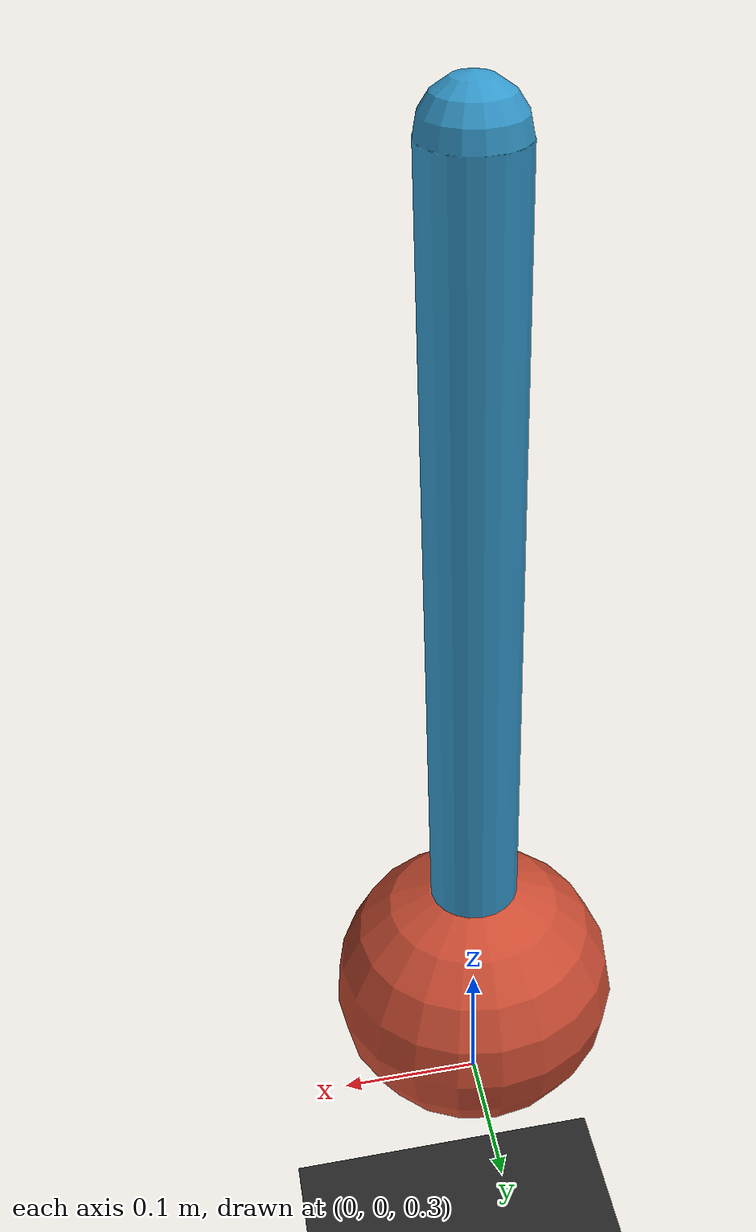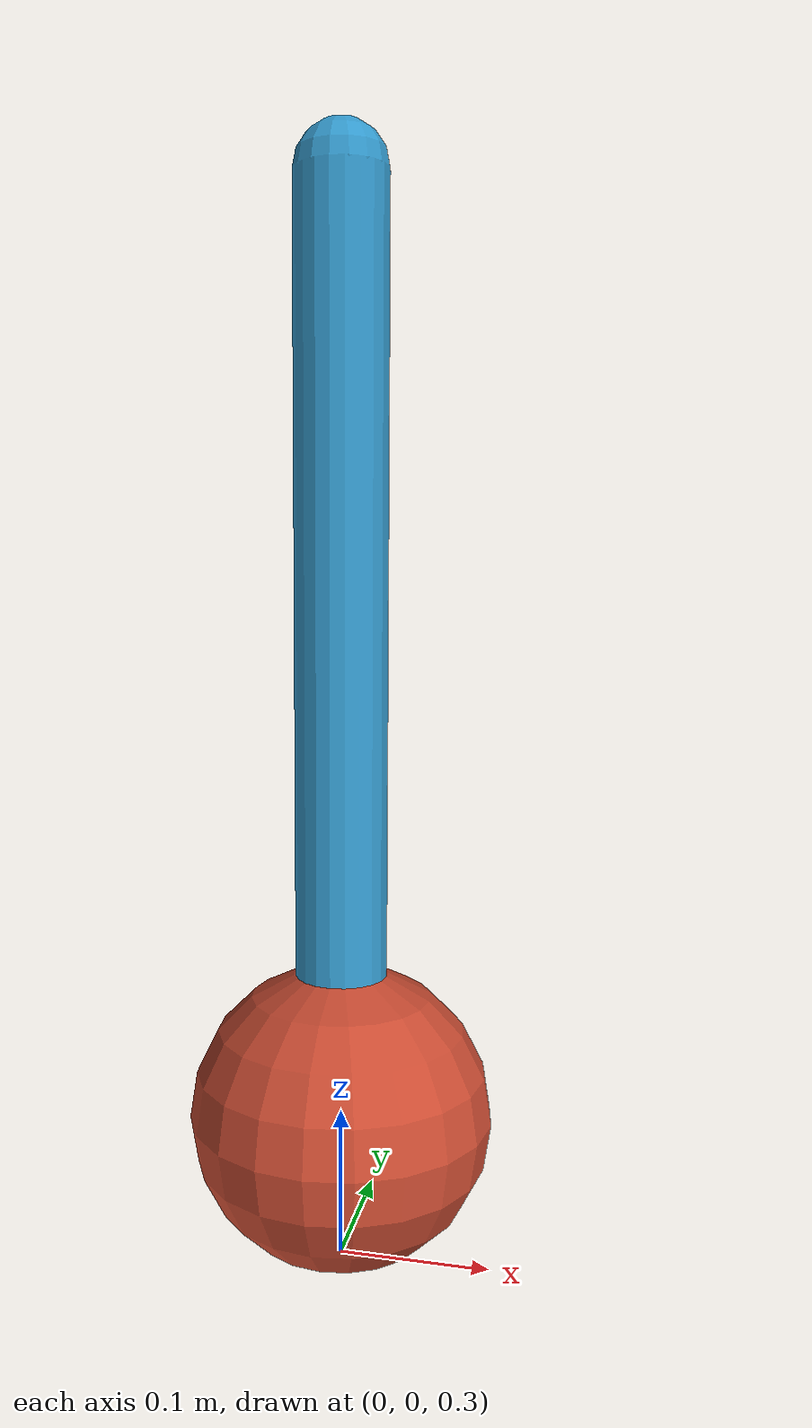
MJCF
<mujoco model="inverted_single_pendulum">
  <compiler coordinate="local" inertiafromgeom="true" />
  <option gravity="0 0 -9.81" timestep="0.002" />

  <worldbody>
    <light pos="0 0 5" dir="0 0 -1" castshadow="true"/>
    <geom name="ground" type="plane" size="5 5 0.1" rgba="0.15 0.15 0.15 1" />

    <body name="link_1" pos="0 0 1.0">
      <joint name="joint_1" type="hinge" axis="0 1 0" damping="0.0"/>

      <geom name="arm_geom" type="capsule" fromto="0 0 0 0 0 -0.6" size="0.03" mass="2.0" rgba="0.2 0.6 0.8 1" />

      <geom name="bob_geom" type="sphere" size="0.1" pos="0 0 -0.6" mass="3.5" rgba="0.8 0.3 0.2 1" />

      <site name="tip" pos="0 0 -0.6" size="0.01" />
    </body>
  </worldbody>

    <actuator>
      <motor joint="joint_1" ctrlrange="-5 5" ctrllimited="true"/>
    </actuator>
</mujoco>
